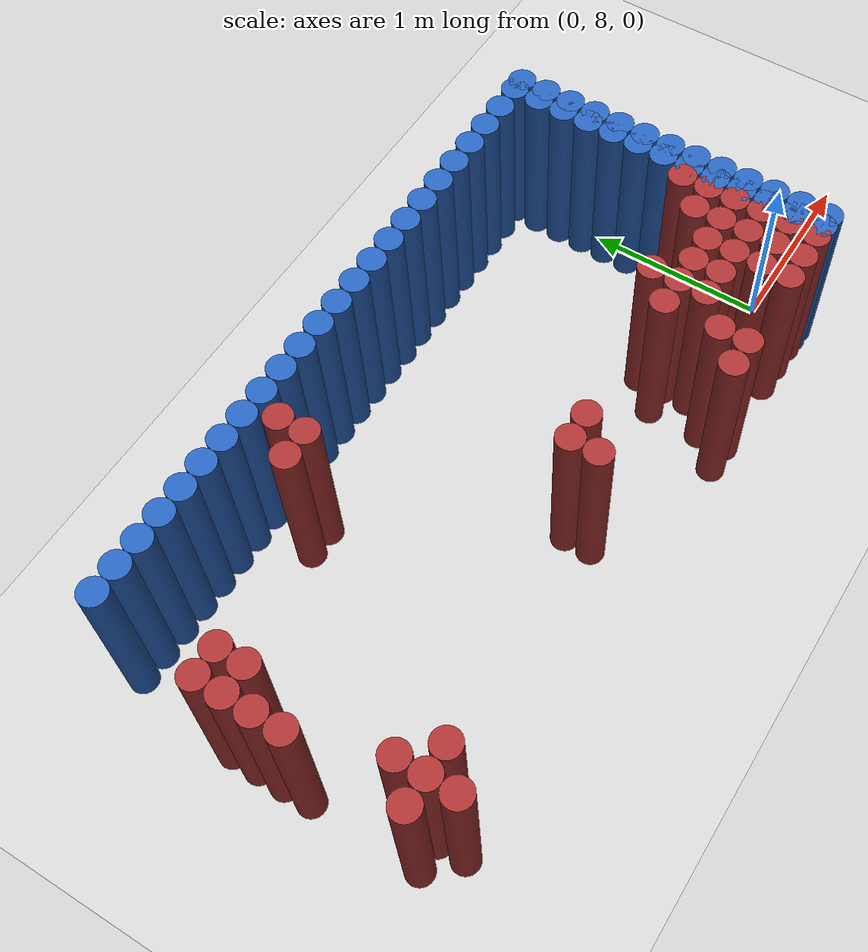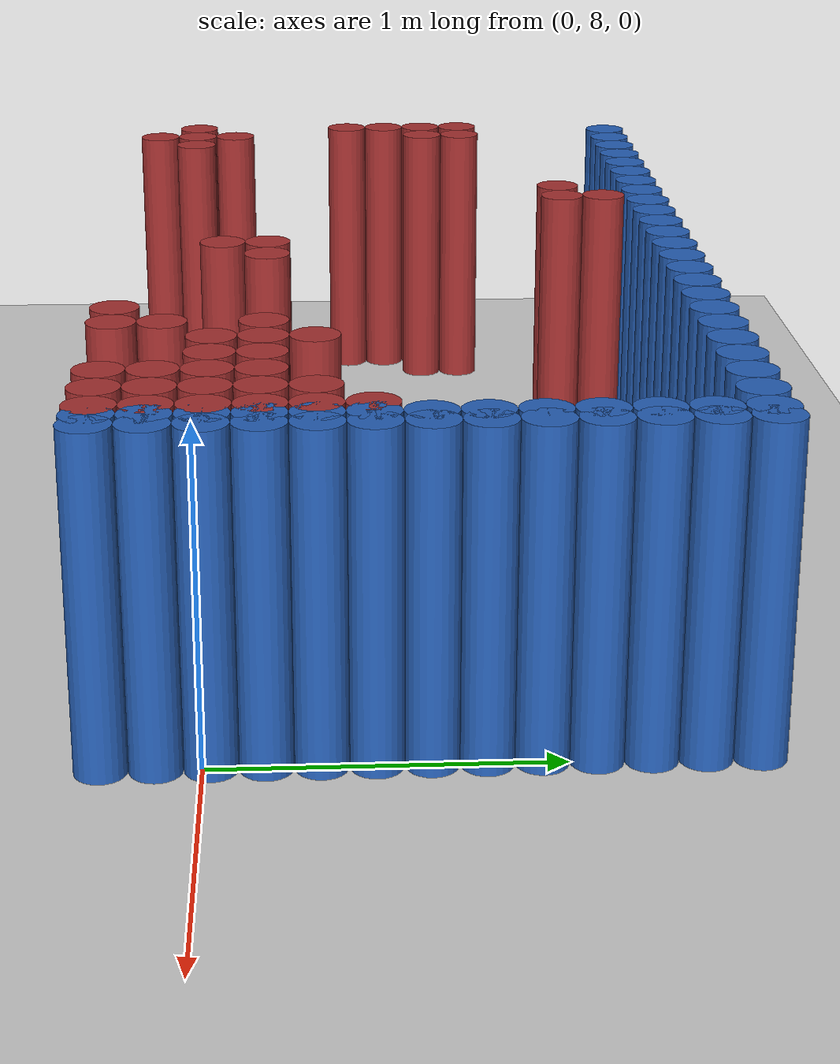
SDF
<sdf version="1.6">
 <world name="barn_world">
  <model name="ground_plane">
   <static>1</static>
   <link name="link">
    <collision name="collision">
     <geometry><plane><normal>0 0 1</normal><size>100 100</size></plane></geometry>
    </collision>
    <visual name="visual">
     <geometry><plane><normal>0 0 1</normal><size>100 100</size></plane></geometry>
     <material>
      <script><uri>file://media/materials/scripts/gazebo.material</uri><name>Gazebo/Grey</name></script>
     </material>
    </visual>
   </link>
  </model>
  <model name="unit_cylinder_212">
   <static>1</static>
   <pose>-3.6000 7.8750 0.5 0 0 0</pose>
   <link name="link">
    <collision name="collision">
     <geometry><cylinder><radius>0.075</radius><length>1</length></cylinder></geometry>
    </collision>
    <visual name="visual">
     <geometry><cylinder><radius>0.075</radius><length>1</length></cylinder></geometry>
     <material><ambient>0.648 0.192 0.192 1</ambient><diffuse>0.648 0.192 0.192 1</diffuse></material>
    </visual>
   </link>
  </model>
  <model name="unit_cylinder_213">
   <static>1</static>
   <pose>-3.6000 8.4750 0.5 0 0 0</pose>
   <link name="link">
    <collision name="collision">
     <geometry><cylinder><radius>0.075</radius><length>1</length></cylinder></geometry>
    </collision>
    <visual name="visual">
     <geometry><cylinder><radius>0.075</radius><length>1</length></cylinder></geometry>
     <material><ambient>0.648 0.192 0.192 1</ambient><diffuse>0.648 0.192 0.192 1</diffuse></material>
    </visual>
   </link>
  </model>
  <model name="unit_cylinder_214">
   <static>1</static>
   <pose>-3.6000 8.6250 0.5 0 0 0</pose>
   <link name="link">
    <collision name="collision">
     <geometry><cylinder><radius>0.075</radius><length>1</length></cylinder></geometry>
    </collision>
    <visual name="visual">
     <geometry><cylinder><radius>0.075</radius><length>1</length></cylinder></geometry>
     <material><ambient>0.648 0.192 0.192 1</ambient><diffuse>0.648 0.192 0.192 1</diffuse></material>
    </visual>
   </link>
  </model>
  <model name="unit_cylinder_215">
   <static>1</static>
   <pose>-3.6000 8.7750 0.5 0 0 0</pose>
   <link name="link">
    <collision name="collision">
     <geometry><cylinder><radius>0.075</radius><length>1</length></cylinder></geometry>
    </collision>
    <visual name="visual">
     <geometry><cylinder><radius>0.075</radius><length>1</length></cylinder></geometry>
     <material><ambient>0.648 0.192 0.192 1</ambient><diffuse>0.648 0.192 0.192 1</diffuse></material>
    </visual>
   </link>
  </model>
  <model name="unit_cylinder_216">
   <static>1</static>
   <pose>-3.6000 8.9250 0.5 0 0 0</pose>
   <link name="link">
    <collision name="collision">
     <geometry><cylinder><radius>0.075</radius><length>1</length></cylinder></geometry>
    </collision>
    <visual name="visual">
     <geometry><cylinder><radius>0.075</radius><length>1</length></cylinder></geometry>
     <material><ambient>0.648 0.192 0.192 1</ambient><diffuse>0.648 0.192 0.192 1</diffuse></material>
    </visual>
   </link>
  </model>
  <model name="unit_cylinder_221">
   <static>1</static>
   <pose>-3.4500 7.7250 0.5 0 0 0</pose>
   <link name="link">
    <collision name="collision">
     <geometry><cylinder><radius>0.075</radius><length>1</length></cylinder></geometry>
    </collision>
    <visual name="visual">
     <geometry><cylinder><radius>0.075</radius><length>1</length></cylinder></geometry>
     <material><ambient>0.648 0.192 0.192 1</ambient><diffuse>0.648 0.192 0.192 1</diffuse></material>
    </visual>
   </link>
  </model>
  <model name="unit_cylinder_222">
   <static>1</static>
   <pose>-3.4500 7.8750 0.5 0 0 0</pose>
   <link name="link">
    <collision name="collision">
     <geometry><cylinder><radius>0.075</radius><length>1</length></cylinder></geometry>
    </collision>
    <visual name="visual">
     <geometry><cylinder><radius>0.075</radius><length>1</length></cylinder></geometry>
     <material><ambient>0.648 0.192 0.192 1</ambient><diffuse>0.648 0.192 0.192 1</diffuse></material>
    </visual>
   </link>
  </model>
  <model name="unit_cylinder_223">
   <static>1</static>
   <pose>-3.4500 8.0250 0.5 0 0 0</pose>
   <link name="link">
    <collision name="collision">
     <geometry><cylinder><radius>0.075</radius><length>1</length></cylinder></geometry>
    </collision>
    <visual name="visual">
     <geometry><cylinder><radius>0.075</radius><length>1</length></cylinder></geometry>
     <material><ambient>0.648 0.192 0.192 1</ambient><diffuse>0.648 0.192 0.192 1</diffuse></material>
    </visual>
   </link>
  </model>
  <model name="unit_cylinder_224">
   <static>1</static>
   <pose>-3.4500 8.7750 0.5 0 0 0</pose>
   <link name="link">
    <collision name="collision">
     <geometry><cylinder><radius>0.075</radius><length>1</length></cylinder></geometry>
    </collision>
    <visual name="visual">
     <geometry><cylinder><radius>0.075</radius><length>1</length></cylinder></geometry>
     <material><ambient>0.648 0.192 0.192 1</ambient><diffuse>0.648 0.192 0.192 1</diffuse></material>
    </visual>
   </link>
  </model>
  <model name="unit_cylinder_225">
   <static>1</static>
   <pose>-3.4500 8.9250 0.5 0 0 0</pose>
   <link name="link">
    <collision name="collision">
     <geometry><cylinder><radius>0.075</radius><length>1</length></cylinder></geometry>
    </collision>
    <visual name="visual">
     <geometry><cylinder><radius>0.075</radius><length>1</length></cylinder></geometry>
     <material><ambient>0.648 0.192 0.192 1</ambient><diffuse>0.648 0.192 0.192 1</diffuse></material>
    </visual>
   </link>
  </model>
  <model name="unit_cylinder_228">
   <static>1</static>
   <pose>-3.3000 7.8750 0.5 0 0 0</pose>
   <link name="link">
    <collision name="collision">
     <geometry><cylinder><radius>0.075</radius><length>1</length></cylinder></geometry>
    </collision>
    <visual name="visual">
     <geometry><cylinder><radius>0.075</radius><length>1</length></cylinder></geometry>
     <material><ambient>0.648 0.192 0.192 1</ambient><diffuse>0.648 0.192 0.192 1</diffuse></material>
    </visual>
   </link>
  </model>
  <model name="unit_cylinder_250">
   <static>1</static>
   <pose>-2.5500 9.2250 0.5 0 0 0</pose>
   <link name="link">
    <collision name="collision">
     <geometry><cylinder><radius>0.075</radius><length>1</length></cylinder></geometry>
    </collision>
    <visual name="visual">
     <geometry><cylinder><radius>0.075</radius><length>1</length></cylinder></geometry>
     <material><ambient>0.648 0.192 0.192 1</ambient><diffuse>0.648 0.192 0.192 1</diffuse></material>
    </visual>
   </link>
  </model>
  <model name="unit_cylinder_252">
   <static>1</static>
   <pose>-2.4000 9.2250 0.5 0 0 0</pose>
   <link name="link">
    <collision name="collision">
     <geometry><cylinder><radius>0.075</radius><length>1</length></cylinder></geometry>
    </collision>
    <visual name="visual">
     <geometry><cylinder><radius>0.075</radius><length>1</length></cylinder></geometry>
     <material><ambient>0.648 0.192 0.192 1</ambient><diffuse>0.648 0.192 0.192 1</diffuse></material>
    </visual>
   </link>
  </model>
  <model name="unit_cylinder_253">
   <static>1</static>
   <pose>-2.4000 9.3750 0.5 0 0 0</pose>
   <link name="link">
    <collision name="collision">
     <geometry><cylinder><radius>0.075</radius><length>1</length></cylinder></geometry>
    </collision>
    <visual name="visual">
     <geometry><cylinder><radius>0.075</radius><length>1</length></cylinder></geometry>
     <material><ambient>0.648 0.192 0.192 1</ambient><diffuse>0.648 0.192 0.192 1</diffuse></material>
    </visual>
   </link>
  </model>
  <model name="unit_cylinder_257">
   <static>1</static>
   <pose>-1.8000 8.0250 0.5 0 0 0</pose>
   <link name="link">
    <collision name="collision">
     <geometry><cylinder><radius>0.075</radius><length>1</length></cylinder></geometry>
    </collision>
    <visual name="visual">
     <geometry><cylinder><radius>0.075</radius><length>1</length></cylinder></geometry>
     <material><ambient>0.648 0.192 0.192 1</ambient><diffuse>0.648 0.192 0.192 1</diffuse></material>
    </visual>
   </link>
  </model>
  <model name="unit_cylinder_258">
   <static>1</static>
   <pose>-1.8000 8.1750 0.5 0 0 0</pose>
   <link name="link">
    <collision name="collision">
     <geometry><cylinder><radius>0.075</radius><length>1</length></cylinder></geometry>
    </collision>
    <visual name="visual">
     <geometry><cylinder><radius>0.075</radius><length>1</length></cylinder></geometry>
     <material><ambient>0.648 0.192 0.192 1</ambient><diffuse>0.648 0.192 0.192 1</diffuse></material>
    </visual>
   </link>
  </model>
  <model name="unit_cylinder_260">
   <static>1</static>
   <pose>-1.6500 8.1750 0.5 0 0 0</pose>
   <link name="link">
    <collision name="collision">
     <geometry><cylinder><radius>0.075</radius><length>1</length></cylinder></geometry>
    </collision>
    <visual name="visual">
     <geometry><cylinder><radius>0.075</radius><length>1</length></cylinder></geometry>
     <material><ambient>0.648 0.192 0.192 1</ambient><diffuse>0.648 0.192 0.192 1</diffuse></material>
    </visual>
   </link>
  </model>
  <model name="unit_cylinder_271">
   <static>1</static>
   <pose>-1.0500 7.7250 0.5 0 0 0</pose>
   <link name="link">
    <collision name="collision">
     <geometry><cylinder><radius>0.075</radius><length>1</length></cylinder></geometry>
    </collision>
    <visual name="visual">
     <geometry><cylinder><radius>0.075</radius><length>1</length></cylinder></geometry>
     <material><ambient>0.648 0.192 0.192 1</ambient><diffuse>0.648 0.192 0.192 1</diffuse></material>
    </visual>
   </link>
  </model>
  <model name="unit_cylinder_276">
   <static>1</static>
   <pose>-0.9000 7.7250 0.5 0 0 0</pose>
   <link name="link">
    <collision name="collision">
     <geometry><cylinder><radius>0.075</radius><length>1</length></cylinder></geometry>
    </collision>
    <visual name="visual">
     <geometry><cylinder><radius>0.075</radius><length>1</length></cylinder></geometry>
     <material><ambient>0.648 0.192 0.192 1</ambient><diffuse>0.648 0.192 0.192 1</diffuse></material>
    </visual>
   </link>
  </model>
  <model name="unit_cylinder_277">
   <static>1</static>
   <pose>-0.9000 7.8750 0.5 0 0 0</pose>
   <link name="link">
    <collision name="collision">
     <geometry><cylinder><radius>0.075</radius><length>1</length></cylinder></geometry>
    </collision>
    <visual name="visual">
     <geometry><cylinder><radius>0.075</radius><length>1</length></cylinder></geometry>
     <material><ambient>0.648 0.192 0.192 1</ambient><diffuse>0.648 0.192 0.192 1</diffuse></material>
    </visual>
   </link>
  </model>
  <model name="unit_cylinder_278">
   <static>1</static>
   <pose>-0.9000 8.1750 0.5 0 0 0</pose>
   <link name="link">
    <collision name="collision">
     <geometry><cylinder><radius>0.075</radius><length>1</length></cylinder></geometry>
    </collision>
    <visual name="visual">
     <geometry><cylinder><radius>0.075</radius><length>1</length></cylinder></geometry>
     <material><ambient>0.648 0.192 0.192 1</ambient><diffuse>0.648 0.192 0.192 1</diffuse></material>
    </visual>
   </link>
  </model>
  <model name="unit_cylinder_282">
   <static>1</static>
   <pose>-0.7500 8.0250 0.5 0 0 0</pose>
   <link name="link">
    <collision name="collision">
     <geometry><cylinder><radius>0.075</radius><length>1</length></cylinder></geometry>
    </collision>
    <visual name="visual">
     <geometry><cylinder><radius>0.075</radius><length>1</length></cylinder></geometry>
     <material><ambient>0.648 0.192 0.192 1</ambient><diffuse>0.648 0.192 0.192 1</diffuse></material>
    </visual>
   </link>
  </model>
  <model name="unit_cylinder_283">
   <static>1</static>
   <pose>-0.7500 8.1750 0.5 0 0 0</pose>
   <link name="link">
    <collision name="collision">
     <geometry><cylinder><radius>0.075</radius><length>1</length></cylinder></geometry>
    </collision>
    <visual name="visual">
     <geometry><cylinder><radius>0.075</radius><length>1</length></cylinder></geometry>
     <material><ambient>0.648 0.192 0.192 1</ambient><diffuse>0.648 0.192 0.192 1</diffuse></material>
    </visual>
   </link>
  </model>
  <model name="unit_cylinder_284">
   <static>1</static>
   <pose>-0.7500 8.3250 0.5 0 0 0</pose>
   <link name="link">
    <collision name="collision">
     <geometry><cylinder><radius>0.075</radius><length>1</length></cylinder></geometry>
    </collision>
    <visual name="visual">
     <geometry><cylinder><radius>0.075</radius><length>1</length></cylinder></geometry>
     <material><ambient>0.648 0.192 0.192 1</ambient><diffuse>0.648 0.192 0.192 1</diffuse></material>
    </visual>
   </link>
  </model>
  <model name="unit_cylinder_288">
   <static>1</static>
   <pose>-0.6000 8.0250 0.5 0 0 0</pose>
   <link name="link">
    <collision name="collision">
     <geometry><cylinder><radius>0.075</radius><length>1</length></cylinder></geometry>
    </collision>
    <visual name="visual">
     <geometry><cylinder><radius>0.075</radius><length>1</length></cylinder></geometry>
     <material><ambient>0.648 0.192 0.192 1</ambient><diffuse>0.648 0.192 0.192 1</diffuse></material>
    </visual>
   </link>
  </model>
  <model name="unit_cylinder_289">
   <static>1</static>
   <pose>-0.6000 8.1750 0.5 0 0 0</pose>
   <link name="link">
    <collision name="collision">
     <geometry><cylinder><radius>0.075</radius><length>1</length></cylinder></geometry>
    </collision>
    <visual name="visual">
     <geometry><cylinder><radius>0.075</radius><length>1</length></cylinder></geometry>
     <material><ambient>0.648 0.192 0.192 1</ambient><diffuse>0.648 0.192 0.192 1</diffuse></material>
    </visual>
   </link>
  </model>
  <model name="unit_cylinder_296">
   <static>1</static>
   <pose>-0.4500 7.7250 0.5 0 0 0</pose>
   <link name="link">
    <collision name="collision">
     <geometry><cylinder><radius>0.075</radius><length>1</length></cylinder></geometry>
    </collision>
    <visual name="visual">
     <geometry><cylinder><radius>0.075</radius><length>1</length></cylinder></geometry>
     <material><ambient>0.648 0.192 0.192 1</ambient><diffuse>0.648 0.192 0.192 1</diffuse></material>
    </visual>
   </link>
  </model>
  <model name="unit_cylinder_297">
   <static>1</static>
   <pose>-0.4500 7.8750 0.5 0 0 0</pose>
   <link name="link">
    <collision name="collision">
     <geometry><cylinder><radius>0.075</radius><length>1</length></cylinder></geometry>
    </collision>
    <visual name="visual">
     <geometry><cylinder><radius>0.075</radius><length>1</length></cylinder></geometry>
     <material><ambient>0.648 0.192 0.192 1</ambient><diffuse>0.648 0.192 0.192 1</diffuse></material>
    </visual>
   </link>
  </model>
  <model name="unit_cylinder_298">
   <static>1</static>
   <pose>-0.4500 8.0250 0.5 0 0 0</pose>
   <link name="link">
    <collision name="collision">
     <geometry><cylinder><radius>0.075</radius><length>1</length></cylinder></geometry>
    </collision>
    <visual name="visual">
     <geometry><cylinder><radius>0.075</radius><length>1</length></cylinder></geometry>
     <material><ambient>0.648 0.192 0.192 1</ambient><diffuse>0.648 0.192 0.192 1</diffuse></material>
    </visual>
   </link>
  </model>
  <model name="unit_cylinder_299">
   <static>1</static>
   <pose>-0.4500 8.1750 0.5 0 0 0</pose>
   <link name="link">
    <collision name="collision">
     <geometry><cylinder><radius>0.075</radius><length>1</length></cylinder></geometry>
    </collision>
    <visual name="visual">
     <geometry><cylinder><radius>0.075</radius><length>1</length></cylinder></geometry>
     <material><ambient>0.648 0.192 0.192 1</ambient><diffuse>0.648 0.192 0.192 1</diffuse></material>
    </visual>
   </link>
  </model>
  <model name="unit_cylinder_308">
   <static>1</static>
   <pose>-0.3000 7.7250 0.5 0 0 0</pose>
   <link name="link">
    <collision name="collision">
     <geometry><cylinder><radius>0.075</radius><length>1</length></cylinder></geometry>
    </collision>
    <visual name="visual">
     <geometry><cylinder><radius>0.075</radius><length>1</length></cylinder></geometry>
     <material><ambient>0.648 0.192 0.192 1</ambient><diffuse>0.648 0.192 0.192 1</diffuse></material>
    </visual>
   </link>
  </model>
  <model name="unit_cylinder_309">
   <static>1</static>
   <pose>-0.3000 7.8750 0.5 0 0 0</pose>
   <link name="link">
    <collision name="collision">
     <geometry><cylinder><radius>0.075</radius><length>1</length></cylinder></geometry>
    </collision>
    <visual name="visual">
     <geometry><cylinder><radius>0.075</radius><length>1</length></cylinder></geometry>
     <material><ambient>0.648 0.192 0.192 1</ambient><diffuse>0.648 0.192 0.192 1</diffuse></material>
    </visual>
   </link>
  </model>
  <model name="unit_cylinder_310">
   <static>1</static>
   <pose>-0.3000 8.0250 0.5 0 0 0</pose>
   <link name="link">
    <collision name="collision">
     <geometry><cylinder><radius>0.075</radius><length>1</length></cylinder></geometry>
    </collision>
    <visual name="visual">
     <geometry><cylinder><radius>0.075</radius><length>1</length></cylinder></geometry>
     <material><ambient>0.648 0.192 0.192 1</ambient><diffuse>0.648 0.192 0.192 1</diffuse></material>
    </visual>
   </link>
  </model>
  <model name="unit_cylinder_311">
   <static>1</static>
   <pose>-0.3000 8.1750 0.5 0 0 0</pose>
   <link name="link">
    <collision name="collision">
     <geometry><cylinder><radius>0.075</radius><length>1</length></cylinder></geometry>
    </collision>
    <visual name="visual">
     <geometry><cylinder><radius>0.075</radius><length>1</length></cylinder></geometry>
     <material><ambient>0.648 0.192 0.192 1</ambient><diffuse>0.648 0.192 0.192 1</diffuse></material>
    </visual>
   </link>
  </model>
  <model name="unit_cylinder_312">
   <static>1</static>
   <pose>-0.3000 8.3250 0.5 0 0 0</pose>
   <link name="link">
    <collision name="collision">
     <geometry><cylinder><radius>0.075</radius><length>1</length></cylinder></geometry>
    </collision>
    <visual name="visual">
     <geometry><cylinder><radius>0.075</radius><length>1</length></cylinder></geometry>
     <material><ambient>0.648 0.192 0.192 1</ambient><diffuse>0.648 0.192 0.192 1</diffuse></material>
    </visual>
   </link>
  </model>
  <model name="unit_cylinder_324">
   <static>1</static>
   <pose>-0.1500 7.7250 0.5 0 0 0</pose>
   <link name="link">
    <collision name="collision">
     <geometry><cylinder><radius>0.075</radius><length>1</length></cylinder></geometry>
    </collision>
    <visual name="visual">
     <geometry><cylinder><radius>0.075</radius><length>1</length></cylinder></geometry>
     <material><ambient>0.648 0.192 0.192 1</ambient><diffuse>0.648 0.192 0.192 1</diffuse></material>
    </visual>
   </link>
  </model>
  <model name="unit_cylinder_325">
   <static>1</static>
   <pose>-0.1500 7.8750 0.5 0 0 0</pose>
   <link name="link">
    <collision name="collision">
     <geometry><cylinder><radius>0.075</radius><length>1</length></cylinder></geometry>
    </collision>
    <visual name="visual">
     <geometry><cylinder><radius>0.075</radius><length>1</length></cylinder></geometry>
     <material><ambient>0.648 0.192 0.192 1</ambient><diffuse>0.648 0.192 0.192 1</diffuse></material>
    </visual>
   </link>
  </model>
  <model name="unit_cylinder_326">
   <static>1</static>
   <pose>-0.1500 8.0250 0.5 0 0 0</pose>
   <link name="link">
    <collision name="collision">
     <geometry><cylinder><radius>0.075</radius><length>1</length></cylinder></geometry>
    </collision>
    <visual name="visual">
     <geometry><cylinder><radius>0.075</radius><length>1</length></cylinder></geometry>
     <material><ambient>0.648 0.192 0.192 1</ambient><diffuse>0.648 0.192 0.192 1</diffuse></material>
    </visual>
   </link>
  </model>
  <model name="unit_cylinder_327">
   <static>1</static>
   <pose>-0.1500 8.1750 0.5 0 0 0</pose>
   <link name="link">
    <collision name="collision">
     <geometry><cylinder><radius>0.075</radius><length>1</length></cylinder></geometry>
    </collision>
    <visual name="visual">
     <geometry><cylinder><radius>0.075</radius><length>1</length></cylinder></geometry>
     <material><ambient>0.648 0.192 0.192 1</ambient><diffuse>0.648 0.192 0.192 1</diffuse></material>
    </visual>
   </link>
  </model>
  <model name="unit_cylinder_328">
   <static>1</static>
   <pose>-0.1500 8.3250 0.5 0 0 0</pose>
   <link name="link">
    <collision name="collision">
     <geometry><cylinder><radius>0.075</radius><length>1</length></cylinder></geometry>
    </collision>
    <visual name="visual">
     <geometry><cylinder><radius>0.075</radius><length>1</length></cylinder></geometry>
     <material><ambient>0.648 0.192 0.192 1</ambient><diffuse>0.648 0.192 0.192 1</diffuse></material>
    </visual>
   </link>
  </model>
  <model name="unit_cylinder_329">
   <static>1</static>
   <pose>-0.1500 8.4750 0.5 0 0 0</pose>
   <link name="link">
    <collision name="collision">
     <geometry><cylinder><radius>0.075</radius><length>1</length></cylinder></geometry>
    </collision>
    <visual name="visual">
     <geometry><cylinder><radius>0.075</radius><length>1</length></cylinder></geometry>
     <material><ambient>0.648 0.192 0.192 1</ambient><diffuse>0.648 0.192 0.192 1</diffuse></material>
    </visual>
   </link>
  </model>
  <model name="unit_cylinder_347">
   <static>1</static>
   <pose>0.0000 7.7250 0.5 0 0 0</pose>
   <link name="link">
    <collision name="collision">
     <geometry><cylinder><radius>0.075</radius><length>1</length></cylinder></geometry>
    </collision>
    <visual name="visual">
     <geometry><cylinder><radius>0.075</radius><length>1</length></cylinder></geometry>
     <material><ambient>0.152 0.379 0.72 1</ambient><diffuse>0.152 0.379 0.72 1</diffuse></material>
    </visual>
   </link>
  </model>
  <model name="unit_cylinder_348">
   <static>1</static>
   <pose>0.0000 7.8750 0.5 0 0 0</pose>
   <link name="link">
    <collision name="collision">
     <geometry><cylinder><radius>0.075</radius><length>1</length></cylinder></geometry>
    </collision>
    <visual name="visual">
     <geometry><cylinder><radius>0.075</radius><length>1</length></cylinder></geometry>
     <material><ambient>0.152 0.379 0.72 1</ambient><diffuse>0.152 0.379 0.72 1</diffuse></material>
    </visual>
   </link>
  </model>
  <model name="unit_cylinder_349">
   <static>1</static>
   <pose>0.0000 8.0250 0.5 0 0 0</pose>
   <link name="link">
    <collision name="collision">
     <geometry><cylinder><radius>0.075</radius><length>1</length></cylinder></geometry>
    </collision>
    <visual name="visual">
     <geometry><cylinder><radius>0.075</radius><length>1</length></cylinder></geometry>
     <material><ambient>0.152 0.379 0.72 1</ambient><diffuse>0.152 0.379 0.72 1</diffuse></material>
    </visual>
   </link>
  </model>
  <model name="unit_cylinder_350">
   <static>1</static>
   <pose>0.0000 8.1750 0.5 0 0 0</pose>
   <link name="link">
    <collision name="collision">
     <geometry><cylinder><radius>0.075</radius><length>1</length></cylinder></geometry>
    </collision>
    <visual name="visual">
     <geometry><cylinder><radius>0.075</radius><length>1</length></cylinder></geometry>
     <material><ambient>0.152 0.379 0.72 1</ambient><diffuse>0.152 0.379 0.72 1</diffuse></material>
    </visual>
   </link>
  </model>
  <model name="unit_cylinder_351">
   <static>1</static>
   <pose>0.0000 8.3250 0.5 0 0 0</pose>
   <link name="link">
    <collision name="collision">
     <geometry><cylinder><radius>0.075</radius><length>1</length></cylinder></geometry>
    </collision>
    <visual name="visual">
     <geometry><cylinder><radius>0.075</radius><length>1</length></cylinder></geometry>
     <material><ambient>0.152 0.379 0.72 1</ambient><diffuse>0.152 0.379 0.72 1</diffuse></material>
    </visual>
   </link>
  </model>
  <model name="unit_cylinder_352">
   <static>1</static>
   <pose>0.0000 8.4750 0.5 0 0 0</pose>
   <link name="link">
    <collision name="collision">
     <geometry><cylinder><radius>0.075</radius><length>1</length></cylinder></geometry>
    </collision>
    <visual name="visual">
     <geometry><cylinder><radius>0.075</radius><length>1</length></cylinder></geometry>
     <material><ambient>0.152 0.379 0.72 1</ambient><diffuse>0.152 0.379 0.72 1</diffuse></material>
    </visual>
   </link>
  </model>
  <model name="unit_cylinder_353">
   <static>1</static>
   <pose>0.0000 8.6250 0.5 0 0 0</pose>
   <link name="link">
    <collision name="collision">
     <geometry><cylinder><radius>0.075</radius><length>1</length></cylinder></geometry>
    </collision>
    <visual name="visual">
     <geometry><cylinder><radius>0.075</radius><length>1</length></cylinder></geometry>
     <material><ambient>0.152 0.379 0.72 1</ambient><diffuse>0.152 0.379 0.72 1</diffuse></material>
    </visual>
   </link>
  </model>
  <model name="unit_cylinder_354">
   <static>1</static>
   <pose>0.0000 8.7750 0.5 0 0 0</pose>
   <link name="link">
    <collision name="collision">
     <geometry><cylinder><radius>0.075</radius><length>1</length></cylinder></geometry>
    </collision>
    <visual name="visual">
     <geometry><cylinder><radius>0.075</radius><length>1</length></cylinder></geometry>
     <material><ambient>0.152 0.379 0.72 1</ambient><diffuse>0.152 0.379 0.72 1</diffuse></material>
    </visual>
   </link>
  </model>
  <model name="unit_cylinder_355">
   <static>1</static>
   <pose>0.0000 8.9250 0.5 0 0 0</pose>
   <link name="link">
    <collision name="collision">
     <geometry><cylinder><radius>0.075</radius><length>1</length></cylinder></geometry>
    </collision>
    <visual name="visual">
     <geometry><cylinder><radius>0.075</radius><length>1</length></cylinder></geometry>
     <material><ambient>0.152 0.379 0.72 1</ambient><diffuse>0.152 0.379 0.72 1</diffuse></material>
    </visual>
   </link>
  </model>
  <model name="unit_cylinder_356">
   <static>1</static>
   <pose>0.0000 9.0750 0.5 0 0 0</pose>
   <link name="link">
    <collision name="collision">
     <geometry><cylinder><radius>0.075</radius><length>1</length></cylinder></geometry>
    </collision>
    <visual name="visual">
     <geometry><cylinder><radius>0.075</radius><length>1</length></cylinder></geometry>
     <material><ambient>0.152 0.379 0.72 1</ambient><diffuse>0.152 0.379 0.72 1</diffuse></material>
    </visual>
   </link>
  </model>
  <model name="unit_cylinder_357">
   <static>1</static>
   <pose>0.0000 9.2250 0.5 0 0 0</pose>
   <link name="link">
    <collision name="collision">
     <geometry><cylinder><radius>0.075</radius><length>1</length></cylinder></geometry>
    </collision>
    <visual name="visual">
     <geometry><cylinder><radius>0.075</radius><length>1</length></cylinder></geometry>
     <material><ambient>0.152 0.379 0.72 1</ambient><diffuse>0.152 0.379 0.72 1</diffuse></material>
    </visual>
   </link>
  </model>
  <model name="unit_cylinder_358">
   <static>1</static>
   <pose>0.0000 9.3750 0.5 0 0 0</pose>
   <link name="link">
    <collision name="collision">
     <geometry><cylinder><radius>0.075</radius><length>1</length></cylinder></geometry>
    </collision>
    <visual name="visual">
     <geometry><cylinder><radius>0.075</radius><length>1</length></cylinder></geometry>
     <material><ambient>0.152 0.379 0.72 1</ambient><diffuse>0.152 0.379 0.72 1</diffuse></material>
    </visual>
   </link>
  </model>
  <model name="unit_cylinder_359">
   <static>1</static>
   <pose>0.0000 9.5250 0.5 0 0 0</pose>
   <link name="link">
    <collision name="collision">
     <geometry><cylinder><radius>0.075</radius><length>1</length></cylinder></geometry>
    </collision>
    <visual name="visual">
     <geometry><cylinder><radius>0.075</radius><length>1</length></cylinder></geometry>
     <material><ambient>0.152 0.379 0.72 1</ambient><diffuse>0.152 0.379 0.72 1</diffuse></material>
    </visual>
   </link>
  </model>
  <model name="unit_cylinder_360">
   <static>1</static>
   <pose>-0.0750 9.5250 0.5 0 0 0</pose>
   <link name="link">
    <collision name="collision">
     <geometry><cylinder><radius>0.075</radius><length>1</length></cylinder></geometry>
    </collision>
    <visual name="visual">
     <geometry><cylinder><radius>0.075</radius><length>1</length></cylinder></geometry>
     <material><ambient>0.152 0.379 0.72 1</ambient><diffuse>0.152 0.379 0.72 1</diffuse></material>
    </visual>
   </link>
  </model>
  <model name="unit_cylinder_361">
   <static>1</static>
   <pose>-0.2250 9.5250 0.5 0 0 0</pose>
   <link name="link">
    <collision name="collision">
     <geometry><cylinder><radius>0.075</radius><length>1</length></cylinder></geometry>
    </collision>
    <visual name="visual">
     <geometry><cylinder><radius>0.075</radius><length>1</length></cylinder></geometry>
     <material><ambient>0.152 0.379 0.72 1</ambient><diffuse>0.152 0.379 0.72 1</diffuse></material>
    </visual>
   </link>
  </model>
  <model name="unit_cylinder_362">
   <static>1</static>
   <pose>-0.3750 9.5250 0.5 0 0 0</pose>
   <link name="link">
    <collision name="collision">
     <geometry><cylinder><radius>0.075</radius><length>1</length></cylinder></geometry>
    </collision>
    <visual name="visual">
     <geometry><cylinder><radius>0.075</radius><length>1</length></cylinder></geometry>
     <material><ambient>0.152 0.379 0.72 1</ambient><diffuse>0.152 0.379 0.72 1</diffuse></material>
    </visual>
   </link>
  </model>
  <model name="unit_cylinder_363">
   <static>1</static>
   <pose>-0.5250 9.5250 0.5 0 0 0</pose>
   <link name="link">
    <collision name="collision">
     <geometry><cylinder><radius>0.075</radius><length>1</length></cylinder></geometry>
    </collision>
    <visual name="visual">
     <geometry><cylinder><radius>0.075</radius><length>1</length></cylinder></geometry>
     <material><ambient>0.152 0.379 0.72 1</ambient><diffuse>0.152 0.379 0.72 1</diffuse></material>
    </visual>
   </link>
  </model>
  <model name="unit_cylinder_364">
   <static>1</static>
   <pose>-0.6750 9.5250 0.5 0 0 0</pose>
   <link name="link">
    <collision name="collision">
     <geometry><cylinder><radius>0.075</radius><length>1</length></cylinder></geometry>
    </collision>
    <visual name="visual">
     <geometry><cylinder><radius>0.075</radius><length>1</length></cylinder></geometry>
     <material><ambient>0.152 0.379 0.72 1</ambient><diffuse>0.152 0.379 0.72 1</diffuse></material>
    </visual>
   </link>
  </model>
  <model name="unit_cylinder_365">
   <static>1</static>
   <pose>-0.8250 9.5250 0.5 0 0 0</pose>
   <link name="link">
    <collision name="collision">
     <geometry><cylinder><radius>0.075</radius><length>1</length></cylinder></geometry>
    </collision>
    <visual name="visual">
     <geometry><cylinder><radius>0.075</radius><length>1</length></cylinder></geometry>
     <material><ambient>0.152 0.379 0.72 1</ambient><diffuse>0.152 0.379 0.72 1</diffuse></material>
    </visual>
   </link>
  </model>
  <model name="unit_cylinder_366">
   <static>1</static>
   <pose>-0.9750 9.5250 0.5 0 0 0</pose>
   <link name="link">
    <collision name="collision">
     <geometry><cylinder><radius>0.075</radius><length>1</length></cylinder></geometry>
    </collision>
    <visual name="visual">
     <geometry><cylinder><radius>0.075</radius><length>1</length></cylinder></geometry>
     <material><ambient>0.152 0.379 0.72 1</ambient><diffuse>0.152 0.379 0.72 1</diffuse></material>
    </visual>
   </link>
  </model>
  <model name="unit_cylinder_367">
   <static>1</static>
   <pose>-1.1250 9.5250 0.5 0 0 0</pose>
   <link name="link">
    <collision name="collision">
     <geometry><cylinder><radius>0.075</radius><length>1</length></cylinder></geometry>
    </collision>
    <visual name="visual">
     <geometry><cylinder><radius>0.075</radius><length>1</length></cylinder></geometry>
     <material><ambient>0.152 0.379 0.72 1</ambient><diffuse>0.152 0.379 0.72 1</diffuse></material>
    </visual>
   </link>
  </model>
  <model name="unit_cylinder_368">
   <static>1</static>
   <pose>-1.2750 9.5250 0.5 0 0 0</pose>
   <link name="link">
    <collision name="collision">
     <geometry><cylinder><radius>0.075</radius><length>1</length></cylinder></geometry>
    </collision>
    <visual name="visual">
     <geometry><cylinder><radius>0.075</radius><length>1</length></cylinder></geometry>
     <material><ambient>0.152 0.379 0.72 1</ambient><diffuse>0.152 0.379 0.72 1</diffuse></material>
    </visual>
   </link>
  </model>
  <model name="unit_cylinder_369">
   <static>1</static>
   <pose>-1.4250 9.5250 0.5 0 0 0</pose>
   <link name="link">
    <collision name="collision">
     <geometry><cylinder><radius>0.075</radius><length>1</length></cylinder></geometry>
    </collision>
    <visual name="visual">
     <geometry><cylinder><radius>0.075</radius><length>1</length></cylinder></geometry>
     <material><ambient>0.152 0.379 0.72 1</ambient><diffuse>0.152 0.379 0.72 1</diffuse></material>
    </visual>
   </link>
  </model>
  <model name="unit_cylinder_370">
   <static>1</static>
   <pose>-1.5750 9.5250 0.5 0 0 0</pose>
   <link name="link">
    <collision name="collision">
     <geometry><cylinder><radius>0.075</radius><length>1</length></cylinder></geometry>
    </collision>
    <visual name="visual">
     <geometry><cylinder><radius>0.075</radius><length>1</length></cylinder></geometry>
     <material><ambient>0.152 0.379 0.72 1</ambient><diffuse>0.152 0.379 0.72 1</diffuse></material>
    </visual>
   </link>
  </model>
  <model name="unit_cylinder_371">
   <static>1</static>
   <pose>-1.7250 9.5250 0.5 0 0 0</pose>
   <link name="link">
    <collision name="collision">
     <geometry><cylinder><radius>0.075</radius><length>1</length></cylinder></geometry>
    </collision>
    <visual name="visual">
     <geometry><cylinder><radius>0.075</radius><length>1</length></cylinder></geometry>
     <material><ambient>0.152 0.379 0.72 1</ambient><diffuse>0.152 0.379 0.72 1</diffuse></material>
    </visual>
   </link>
  </model>
  <model name="unit_cylinder_372">
   <static>1</static>
   <pose>-1.8750 9.5250 0.5 0 0 0</pose>
   <link name="link">
    <collision name="collision">
     <geometry><cylinder><radius>0.075</radius><length>1</length></cylinder></geometry>
    </collision>
    <visual name="visual">
     <geometry><cylinder><radius>0.075</radius><length>1</length></cylinder></geometry>
     <material><ambient>0.152 0.379 0.72 1</ambient><diffuse>0.152 0.379 0.72 1</diffuse></material>
    </visual>
   </link>
  </model>
  <model name="unit_cylinder_373">
   <static>1</static>
   <pose>-2.0250 9.5250 0.5 0 0 0</pose>
   <link name="link">
    <collision name="collision">
     <geometry><cylinder><radius>0.075</radius><length>1</length></cylinder></geometry>
    </collision>
    <visual name="visual">
     <geometry><cylinder><radius>0.075</radius><length>1</length></cylinder></geometry>
     <material><ambient>0.152 0.379 0.72 1</ambient><diffuse>0.152 0.379 0.72 1</diffuse></material>
    </visual>
   </link>
  </model>
  <model name="unit_cylinder_374">
   <static>1</static>
   <pose>-2.1750 9.5250 0.5 0 0 0</pose>
   <link name="link">
    <collision name="collision">
     <geometry><cylinder><radius>0.075</radius><length>1</length></cylinder></geometry>
    </collision>
    <visual name="visual">
     <geometry><cylinder><radius>0.075</radius><length>1</length></cylinder></geometry>
     <material><ambient>0.152 0.379 0.72 1</ambient><diffuse>0.152 0.379 0.72 1</diffuse></material>
    </visual>
   </link>
  </model>
  <model name="unit_cylinder_375">
   <static>1</static>
   <pose>-2.3250 9.5250 0.5 0 0 0</pose>
   <link name="link">
    <collision name="collision">
     <geometry><cylinder><radius>0.075</radius><length>1</length></cylinder></geometry>
    </collision>
    <visual name="visual">
     <geometry><cylinder><radius>0.075</radius><length>1</length></cylinder></geometry>
     <material><ambient>0.152 0.379 0.72 1</ambient><diffuse>0.152 0.379 0.72 1</diffuse></material>
    </visual>
   </link>
  </model>
  <model name="unit_cylinder_376">
   <static>1</static>
   <pose>-2.4750 9.5250 0.5 0 0 0</pose>
   <link name="link">
    <collision name="collision">
     <geometry><cylinder><radius>0.075</radius><length>1</length></cylinder></geometry>
    </collision>
    <visual name="visual">
     <geometry><cylinder><radius>0.075</radius><length>1</length></cylinder></geometry>
     <material><ambient>0.152 0.379 0.72 1</ambient><diffuse>0.152 0.379 0.72 1</diffuse></material>
    </visual>
   </link>
  </model>
  <model name="unit_cylinder_377">
   <static>1</static>
   <pose>-2.6250 9.5250 0.5 0 0 0</pose>
   <link name="link">
    <collision name="collision">
     <geometry><cylinder><radius>0.075</radius><length>1</length></cylinder></geometry>
    </collision>
    <visual name="visual">
     <geometry><cylinder><radius>0.075</radius><length>1</length></cylinder></geometry>
     <material><ambient>0.152 0.379 0.72 1</ambient><diffuse>0.152 0.379 0.72 1</diffuse></material>
    </visual>
   </link>
  </model>
  <model name="unit_cylinder_378">
   <static>1</static>
   <pose>-2.7750 9.5250 0.5 0 0 0</pose>
   <link name="link">
    <collision name="collision">
     <geometry><cylinder><radius>0.075</radius><length>1</length></cylinder></geometry>
    </collision>
    <visual name="visual">
     <geometry><cylinder><radius>0.075</radius><length>1</length></cylinder></geometry>
     <material><ambient>0.152 0.379 0.72 1</ambient><diffuse>0.152 0.379 0.72 1</diffuse></material>
    </visual>
   </link>
  </model>
  <model name="unit_cylinder_379">
   <static>1</static>
   <pose>-2.9250 9.5250 0.5 0 0 0</pose>
   <link name="link">
    <collision name="collision">
     <geometry><cylinder><radius>0.075</radius><length>1</length></cylinder></geometry>
    </collision>
    <visual name="visual">
     <geometry><cylinder><radius>0.075</radius><length>1</length></cylinder></geometry>
     <material><ambient>0.152 0.379 0.72 1</ambient><diffuse>0.152 0.379 0.72 1</diffuse></material>
    </visual>
   </link>
  </model>
  <model name="unit_cylinder_380">
   <static>1</static>
   <pose>-3.0750 9.5250 0.5 0 0 0</pose>
   <link name="link">
    <collision name="collision">
     <geometry><cylinder><radius>0.075</radius><length>1</length></cylinder></geometry>
    </collision>
    <visual name="visual">
     <geometry><cylinder><radius>0.075</radius><length>1</length></cylinder></geometry>
     <material><ambient>0.152 0.379 0.72 1</ambient><diffuse>0.152 0.379 0.72 1</diffuse></material>
    </visual>
   </link>
  </model>
  <model name="unit_cylinder_381">
   <static>1</static>
   <pose>-3.2250 9.5250 0.5 0 0 0</pose>
   <link name="link">
    <collision name="collision">
     <geometry><cylinder><radius>0.075</radius><length>1</length></cylinder></geometry>
    </collision>
    <visual name="visual">
     <geometry><cylinder><radius>0.075</radius><length>1</length></cylinder></geometry>
     <material><ambient>0.152 0.379 0.72 1</ambient><diffuse>0.152 0.379 0.72 1</diffuse></material>
    </visual>
   </link>
  </model>
  <model name="unit_cylinder_382">
   <static>1</static>
   <pose>-3.3750 9.5250 0.5 0 0 0</pose>
   <link name="link">
    <collision name="collision">
     <geometry><cylinder><radius>0.075</radius><length>1</length></cylinder></geometry>
    </collision>
    <visual name="visual">
     <geometry><cylinder><radius>0.075</radius><length>1</length></cylinder></geometry>
     <material><ambient>0.152 0.379 0.72 1</ambient><diffuse>0.152 0.379 0.72 1</diffuse></material>
    </visual>
   </link>
  </model>
  <model name="unit_cylinder_383">
   <static>1</static>
   <pose>-3.5250 9.5250 0.5 0 0 0</pose>
   <link name="link">
    <collision name="collision">
     <geometry><cylinder><radius>0.075</radius><length>1</length></cylinder></geometry>
    </collision>
    <visual name="visual">
     <geometry><cylinder><radius>0.075</radius><length>1</length></cylinder></geometry>
     <material><ambient>0.152 0.379 0.72 1</ambient><diffuse>0.152 0.379 0.72 1</diffuse></material>
    </visual>
   </link>
  </model>
  <model name="unit_cylinder_424">
   <static>1</static>
   <pose>-0.0750 7.7250 0.5 0 0 0</pose>
   <link name="link">
    <collision name="collision">
     <geometry><cylinder><radius>0.075</radius><length>1</length></cylinder></geometry>
    </collision>
    <visual name="visual">
     <geometry><cylinder><radius>0.075</radius><length>1</length></cylinder></geometry>
     <material><ambient>0.152 0.379 0.72 1</ambient><diffuse>0.152 0.379 0.72 1</diffuse></material>
    </visual>
   </link>
  </model>
  <model name="unit_cylinder_426">
   <static>1</static>
   <pose>-0.0750 7.8750 0.5 0 0 0</pose>
   <link name="link">
    <collision name="collision">
     <geometry><cylinder><radius>0.075</radius><length>1</length></cylinder></geometry>
    </collision>
    <visual name="visual">
     <geometry><cylinder><radius>0.075</radius><length>1</length></cylinder></geometry>
     <material><ambient>0.152 0.379 0.72 1</ambient><diffuse>0.152 0.379 0.72 1</diffuse></material>
    </visual>
   </link>
  </model>
  <model name="unit_cylinder_428">
   <static>1</static>
   <pose>-0.0750 8.0250 0.5 0 0 0</pose>
   <link name="link">
    <collision name="collision">
     <geometry><cylinder><radius>0.075</radius><length>1</length></cylinder></geometry>
    </collision>
    <visual name="visual">
     <geometry><cylinder><radius>0.075</radius><length>1</length></cylinder></geometry>
     <material><ambient>0.152 0.379 0.72 1</ambient><diffuse>0.152 0.379 0.72 1</diffuse></material>
    </visual>
   </link>
  </model>
  <model name="unit_cylinder_430">
   <static>1</static>
   <pose>-0.0750 8.1750 0.5 0 0 0</pose>
   <link name="link">
    <collision name="collision">
     <geometry><cylinder><radius>0.075</radius><length>1</length></cylinder></geometry>
    </collision>
    <visual name="visual">
     <geometry><cylinder><radius>0.075</radius><length>1</length></cylinder></geometry>
     <material><ambient>0.152 0.379 0.72 1</ambient><diffuse>0.152 0.379 0.72 1</diffuse></material>
    </visual>
   </link>
  </model>
  <model name="unit_cylinder_432">
   <static>1</static>
   <pose>-0.0750 8.3250 0.5 0 0 0</pose>
   <link name="link">
    <collision name="collision">
     <geometry><cylinder><radius>0.075</radius><length>1</length></cylinder></geometry>
    </collision>
    <visual name="visual">
     <geometry><cylinder><radius>0.075</radius><length>1</length></cylinder></geometry>
     <material><ambient>0.152 0.379 0.72 1</ambient><diffuse>0.152 0.379 0.72 1</diffuse></material>
    </visual>
   </link>
  </model>
  <model name="unit_cylinder_434">
   <static>1</static>
   <pose>-0.0750 8.4750 0.5 0 0 0</pose>
   <link name="link">
    <collision name="collision">
     <geometry><cylinder><radius>0.075</radius><length>1</length></cylinder></geometry>
    </collision>
    <visual name="visual">
     <geometry><cylinder><radius>0.075</radius><length>1</length></cylinder></geometry>
     <material><ambient>0.152 0.379 0.72 1</ambient><diffuse>0.152 0.379 0.72 1</diffuse></material>
    </visual>
   </link>
  </model>
  <model name="unit_cylinder_436">
   <static>1</static>
   <pose>-0.0750 8.6250 0.5 0 0 0</pose>
   <link name="link">
    <collision name="collision">
     <geometry><cylinder><radius>0.075</radius><length>1</length></cylinder></geometry>
    </collision>
    <visual name="visual">
     <geometry><cylinder><radius>0.075</radius><length>1</length></cylinder></geometry>
     <material><ambient>0.152 0.379 0.72 1</ambient><diffuse>0.152 0.379 0.72 1</diffuse></material>
    </visual>
   </link>
  </model>
  <model name="unit_cylinder_438">
   <static>1</static>
   <pose>-0.0750 8.7750 0.5 0 0 0</pose>
   <link name="link">
    <collision name="collision">
     <geometry><cylinder><radius>0.075</radius><length>1</length></cylinder></geometry>
    </collision>
    <visual name="visual">
     <geometry><cylinder><radius>0.075</radius><length>1</length></cylinder></geometry>
     <material><ambient>0.152 0.379 0.72 1</ambient><diffuse>0.152 0.379 0.72 1</diffuse></material>
    </visual>
   </link>
  </model>
  <model name="unit_cylinder_440">
   <static>1</static>
   <pose>-0.0750 8.9250 0.5 0 0 0</pose>
   <link name="link">
    <collision name="collision">
     <geometry><cylinder><radius>0.075</radius><length>1</length></cylinder></geometry>
    </collision>
    <visual name="visual">
     <geometry><cylinder><radius>0.075</radius><length>1</length></cylinder></geometry>
     <material><ambient>0.152 0.379 0.72 1</ambient><diffuse>0.152 0.379 0.72 1</diffuse></material>
    </visual>
   </link>
  </model>
  <model name="unit_cylinder_442">
   <static>1</static>
   <pose>-0.0750 9.0750 0.5 0 0 0</pose>
   <link name="link">
    <collision name="collision">
     <geometry><cylinder><radius>0.075</radius><length>1</length></cylinder></geometry>
    </collision>
    <visual name="visual">
     <geometry><cylinder><radius>0.075</radius><length>1</length></cylinder></geometry>
     <material><ambient>0.152 0.379 0.72 1</ambient><diffuse>0.152 0.379 0.72 1</diffuse></material>
    </visual>
   </link>
  </model>
  <model name="unit_cylinder_444">
   <static>1</static>
   <pose>-0.0750 9.2250 0.5 0 0 0</pose>
   <link name="link">
    <collision name="collision">
     <geometry><cylinder><radius>0.075</radius><length>1</length></cylinder></geometry>
    </collision>
    <visual name="visual">
     <geometry><cylinder><radius>0.075</radius><length>1</length></cylinder></geometry>
     <material><ambient>0.152 0.379 0.72 1</ambient><diffuse>0.152 0.379 0.72 1</diffuse></material>
    </visual>
   </link>
  </model>
  <model name="unit_cylinder_446">
   <static>1</static>
   <pose>-0.0750 9.3750 0.5 0 0 0</pose>
   <link name="link">
    <collision name="collision">
     <geometry><cylinder><radius>0.075</radius><length>1</length></cylinder></geometry>
    </collision>
    <visual name="visual">
     <geometry><cylinder><radius>0.075</radius><length>1</length></cylinder></geometry>
     <material><ambient>0.152 0.379 0.72 1</ambient><diffuse>0.152 0.379 0.72 1</diffuse></material>
    </visual>
   </link>
  </model>
 </world>
</sdf>
